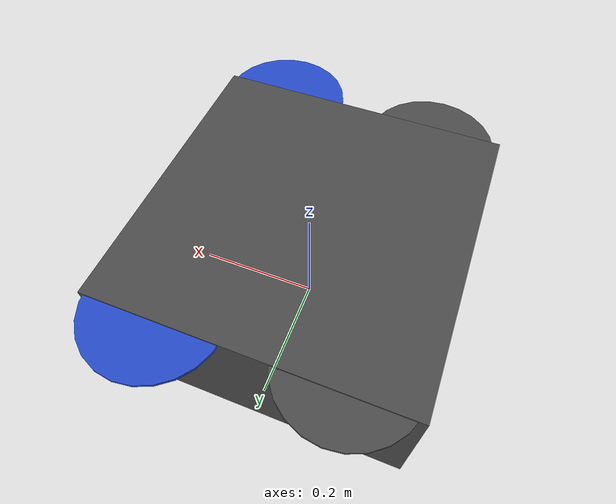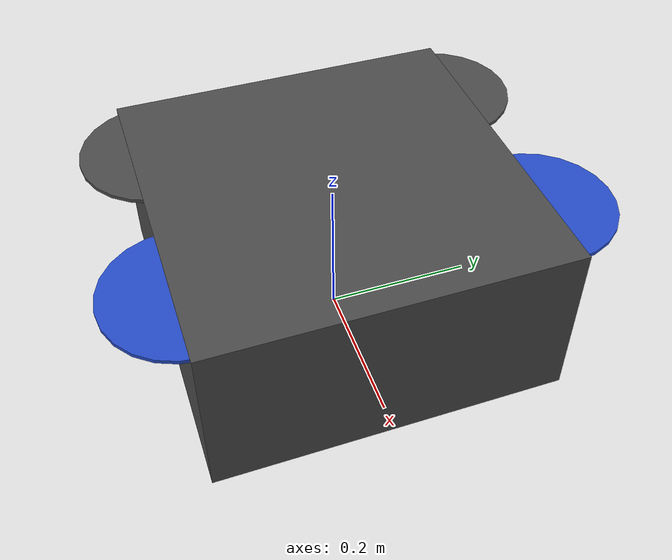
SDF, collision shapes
<?xml version='1.0'?>
<sdf version="1.6" xmlns:xacro='http://ros.org/wiki/xacro'>
  <model name="iris_kinect">
    <include>
      <uri>model://iris_base</uri>
    </include>

    <include>
      <uri>model://kinect_depth</uri>
      <pose>0.03 0 0.13 0 0.6 0</pose>
    </include>

    <joint name="cam_mount" type="fixed">
      <parent>iris_base::base_link</parent>
      <child>kinect::cam_link</child>
      <axis>
        <limit>
          <lower>0</lower>
          <upper>0</upper>
        </limit>
        <xyz>0 0 1</xyz>
        <use_parent_model_frame>true</use_parent_model_frame>
      </axis>
    </joint>

    <!-- plugins -->

    <plugin name="rotor_0_blade_1" filename="libLiftDragPlugin.so">
      <a0>0.1</a0>
      <alpha_stall>1.4</alpha_stall>
      <cla>0.2500</cla>
      <cda>0.10</cda>
      <cma>0.00</cma>
      <cla_stall>-0.025</cla_stall>
      <cda_stall>0.0</cda_stall>
      <cma_stall>0.0</cma_stall>
      <area>0.2</area>
      <air_density>1.2041</air_density>
      <cp>0.084 0 0</cp>
      <forward>0 1 0</forward>
      <upward>0 0 1</upward>
      <link_name>iris_base::rotor_0</link_name>
    </plugin>
    <plugin name="rotor_0_blade_2" filename="libLiftDragPlugin.so">
      <a0>0.1</a0>
      <alpha_stall>1.4</alpha_stall>
      <cla>0.2500</cla>
      <cda>0.10</cda>
      <cma>0.00</cma>
      <cla_stall>-0.025</cla_stall>
      <cda_stall>0.0</cda_stall>
      <cma_stall>0.0</cma_stall>
      <area>0.2</area>
      <air_density>1.2041</air_density>
      <cp>-0.084 0 0</cp>
      <forward>0 -1 0</forward>
      <upward>0 0 1</upward>
      <link_name>iris_base::rotor_0</link_name>
    </plugin>

    <plugin name="rotor_1_blade_1" filename="libLiftDragPlugin.so">
      <a0>0.1</a0>
      <alpha_stall>1.4</alpha_stall>
      <cla>0.2500</cla>
      <cda>0.10</cda>
      <cma>0.00</cma>
      <cla_stall>-0.025</cla_stall>
      <cda_stall>0.0</cda_stall>
      <cma_stall>0.0</cma_stall>
      <area>0.2</area>
      <air_density>1.2041</air_density>
      <cp>0.084 0 0</cp>
      <forward>0 1 0</forward>
      <upward>0 0 1</upward>
      <link_name>iris_base::rotor_1</link_name>
    </plugin>
    <plugin name="rotor_1_blade_2" filename="libLiftDragPlugin.so">
      <a0>0.1</a0>
      <alpha_stall>1.4</alpha_stall>
      <cla>0.2500</cla>
      <cda>0.10</cda>
      <cma>0.00</cma>
      <cla_stall>-0.025</cla_stall>
      <cda_stall>0.0</cda_stall>
      <cma_stall>0.0</cma_stall>
      <area>0.2</area>
      <air_density>1.2041</air_density>
      <cp>-0.084 0 0</cp>
      <forward>0 -1 0</forward>
      <upward>0 0 1</upward>
      <link_name>iris_base::rotor_1</link_name>
    </plugin>

    <plugin name="rotor_2_blade_1" filename="libLiftDragPlugin.so">
      <a0>0.1</a0>
      <alpha_stall>1.4</alpha_stall>
      <cla>0.2500</cla>
      <cda>0.10</cda>
      <cma>0.00</cma>
      <cla_stall>-0.025</cla_stall>
      <cda_stall>0.0</cda_stall>
      <cma_stall>0.0</cma_stall>
      <area>0.2</area>
      <air_density>1.2041</air_density>
      <cp>0.084 0 0</cp>
      <forward>0 -1 0</forward>
      <upward>0 0 1</upward>
      <link_name>iris_base::rotor_2</link_name>
    </plugin>
    <plugin name="rotor_2_blade_2" filename="libLiftDragPlugin.so">
      <a0>0.1</a0>
      <alpha_stall>1.4</alpha_stall>
      <cla>0.2500</cla>
      <cda>0.10</cda>
      <cma>0.00</cma>
      <cla_stall>-0.025</cla_stall>
      <cda_stall>0.0</cda_stall>
      <cma_stall>0.0</cma_stall>
      <area>0.2</area>
      <air_density>1.2041</air_density>
      <cp>-0.084 0 0</cp>
      <forward>0 1 0</forward>
      <upward>0 0 1</upward>
      <link_name>iris_base::rotor_2</link_name>
    </plugin>

    <plugin name="rotor_3_blade_1" filename="libLiftDragPlugin.so">
      <a0>0.1</a0>
      <alpha_stall>1.4</alpha_stall>
      <cla>0.2500</cla>
      <cda>0.10</cda>
      <cma>0.00</cma>
      <cla_stall>-0.025</cla_stall>
      <cda_stall>0.0</cda_stall>
      <cma_stall>0.0</cma_stall>
      <area>0.2</area>
      <air_density>1.2041</air_density>
      <cp>0.084 0 0</cp>
      <forward>0 -1 0</forward>
      <upward>0 0 1</upward>
      <link_name>iris_base::rotor_3</link_name>
    </plugin>
    <plugin name="rotor_3_blade_2" filename="libLiftDragPlugin.so">
      <a0>0.1</a0>
      <alpha_stall>1.4</alpha_stall>
      <cla>0.2500</cla>
      <cda>0.10</cda>
      <cma>0.00</cma>
      <cla_stall>-0.025</cla_stall>
      <cda_stall>0.0</cda_stall>
      <cma_stall>0.0</cma_stall>
      <area>0.2</area>
      <air_density>1.2041</air_density>
      <cp>-0.084 0 0</cp>
      <forward>0 1 0</forward>
      <upward>0 0 1</upward>
      <link_name>iris_base::rotor_3</link_name>
    </plugin>

    <plugin name="arducopter_plugin" filename="libArduPilotPlugin.so">
      <fdm_addr>127.0.0.1</fdm_addr>
      <fdm_port_in>9002</fdm_port_in>
      <fdm_port_out>9003</fdm_port_out>
      <!--
          Require by APM :
          Only change model and gazebo from XYZ to XY-Z coordinates
      -->
      <modelXYZToAirplaneXForwardZDown>0 0 0 3.141593 0 0</modelXYZToAirplaneXForwardZDown>
      <gazeboXYZToNED>0 0 0 3.141593 0 0</gazeboXYZToNED>
      <imuName>iris_kinect::iris_base::iris/imu_link::imu_sensor</imuName>
      <connectionTimeoutMaxCount>5</connectionTimeoutMaxCount>

      <rotor id="0">
        <vel_p_gain>0.01</vel_p_gain>
        <vel_i_gain>0</vel_i_gain>
        <vel_d_gain>0</vel_d_gain>
        <vel_i_max>0</vel_i_max>
        <vel_i_min>0</vel_i_min>
        <vel_cmd_max>2.0</vel_cmd_max>
        <vel_cmd_min>-2.0</vel_cmd_min>
        <jointName>iris_base::rotor_0_joint</jointName>
        <turningDirection>ccw</turningDirection>
        <rotorVelocitySlowdownSim>1</rotorVelocitySlowdownSim>
      </rotor>
      <rotor id="1">
        <vel_p_gain>0.01</vel_p_gain>
        <vel_i_gain>0</vel_i_gain>
        <vel_d_gain>0</vel_d_gain>
        <vel_i_max>0</vel_i_max>
        <vel_i_min>0</vel_i_min>
        <vel_cmd_max>2.0</vel_cmd_max>
        <vel_cmd_min>-2.0</vel_cmd_min>
        <jointName>iris_base::rotor_1_joint</jointName>
        <turningDirection>ccw</turningDirection>
        <rotorVelocitySlowdownSim>1</rotorVelocitySlowdownSim>
      </rotor>
      <rotor id="2">
        <vel_p_gain>0.01</vel_p_gain>
        <vel_i_gain>0</vel_i_gain>
        <vel_d_gain>0</vel_d_gain>
        <vel_i_max>0</vel_i_max>
        <vel_i_min>0</vel_i_min>
        <vel_cmd_max>2.0</vel_cmd_max>
        <vel_cmd_min>-2.0</vel_cmd_min>
        <jointName>iris_base::rotor_2_joint</jointName>
        <turningDirection>cw</turningDirection>
        <rotorVelocitySlowdownSim>1</rotorVelocitySlowdownSim>
      </rotor>
      <rotor id="3">
        <vel_p_gain>0.01</vel_p_gain>
        <vel_i_gain>0</vel_i_gain>
        <vel_d_gain>0</vel_d_gain>
        <vel_i_max>0</vel_i_max>
        <vel_i_min>0</vel_i_min>
        <vel_cmd_max>2.0</vel_cmd_max>
        <vel_cmd_min>-2.0</vel_cmd_min>
        <jointName>iris::rotor_3_joint</jointName>
        <turningDirection>cw</turningDirection>
        <rotorVelocitySlowdownSim>1</rotorVelocitySlowdownSim>
      </rotor>
    </plugin>

  </model>
</sdf>

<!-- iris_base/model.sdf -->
<sdf version='1.6'>
  <model name='iris_base'>
    <pose>0 0 0.194923 0 0 0</pose>
    <link name='base_link'>
      <velocity_decay>
        <linear>0.0</linear>
        <angular>0.0</angular>
      </velocity_decay>
      <inertial>
        <pose>0 0 0 0 0 0</pose>
        <mass>1.5</mass>
        <inertia>
          <ixx>0.008</ixx>
          <ixy>0</ixy>
          <ixz>0</ixz>
          <iyy>0.015</iyy>
          <iyz>0</iyz>
          <izz>0.017</izz>
        </inertia>
      </inertial>
      <collision name='base_link_collision'>
        <pose>0 0 -0.08 0 0 0</pose>
        <geometry>
          <box>
            <size>0.47 0.47 0.23</size>
          </box>
        </geometry>
        <surface>
          <contact>
            <ode>
              <max_vel>100.0</max_vel>
              <min_depth>0.001</min_depth>
            </ode>
          </contact>
          <friction>
            <ode>
              <mu>1.0</mu>
              <mu2>1.0</mu2>
            </ode>
          </friction>
        </surface>
      </collision>
      <visual name='base_link_visual'>
        <geometry>
          <mesh>
            <uri>model://iris_base/meshes/iris.dae</uri>
          </mesh>
        </geometry>
        <material>
          <script>
            <name>Gazebo/DarkGrey</name>
          </script>
        </material>
      </visual>

      <visual name='front_left_leg_visual'>
        <pose>0.123 0.22 -0.11 0 0 0</pose>
        <geometry>
          <cylinder>
            <radius>0.005</radius>
            <length>0.17</length>
          </cylinder>
        </geometry>
        <material>
          <script>
            <name>Gazebo/FlatBlack</name>
            <uri>file://media/materials/scripts/gazebo.material</uri>
          </script>
        </material>
      </visual>
      <visual name='front_right_leg_visual'>
        <pose>0.123 -0.22 -0.11 0 0 0</pose>
        <geometry>
          <cylinder>
            <radius>0.005</radius>
            <length>0.17</length>
          </cylinder>
        </geometry>
        <material>
          <script>
            <name>Gazebo/FlatBlack</name>
            <uri>file://media/materials/scripts/gazebo.material</uri>
          </script>
        </material>
      </visual>
      <visual name='rear_left_leg_visual'>
        <pose>-0.140 0.21 -0.11 0 0 0</pose>
        <geometry>
          <cylinder>
            <radius>0.005</radius>
            <length>0.17</length>
          </cylinder>
        </geometry>
        <material>
          <script>
            <name>Gazebo/FlatBlack</name>
            <uri>file://media/materials/scripts/gazebo.material</uri>
          </script>
        </material>
      </visual>
      <visual name='rear_right_leg_visual'>
        <pose>-0.140 -0.21 -0.11 0 0 0</pose>
        <geometry>
          <cylinder>
            <radius>0.005</radius>
            <length>0.17</length>
          </cylinder>
        </geometry>
        <material>
          <script>
            <name>Gazebo/FlatBlack</name>
            <uri>file://media/materials/scripts/gazebo.material</uri>
          </script>
        </material>
      </visual>
    </link>
    <link name='iris/ground_truth/odometry_sensorgt_link'>
      <pose>0 0 0 0 -0 0</pose>
      <inertial>
        <pose>0 0 0 0 -0 0</pose>
        <mass>0.15</mass>
        <inertia>
          <ixx>0.0001</ixx>
          <ixy>0</ixy>
          <ixz>0</ixz>
          <iyy>0.0002</iyy>
          <iyz>0</iyz>
          <izz>0.0002</izz>
        </inertia>
      </inertial>
    </link>
    <joint name='iris/ground_truth/odometry_sensorgt_joint' type='revolute'>
      <child>iris/ground_truth/odometry_sensorgt_link</child>
      <parent>base_link</parent>
      <axis>
        <xyz>0 0 1</xyz>
        <limit>
          <lower>0</lower>
          <upper>0</upper>
          <effort>0</effort>
          <velocity>0</velocity>
        </limit>
        <dynamics>
          <damping>1.0</damping>
        </dynamics>
        <use_parent_model_frame>1</use_parent_model_frame>
      </axis>
      <physics>
        <ode>
          <implicit_spring_damper>1</implicit_spring_damper>
        </ode>
      </physics>
    </joint>
    <link name='iris/imu_link'>
      <inertial>
        <pose>0 0 0 0 0 0</pose>
        <mass>0.15</mass>
        <inertia>
          <ixx>0.00001</ixx>
          <ixy>0</ixy>
          <ixz>0</ixz>
          <iyy>0.00002</iyy>
          <iyz>0</iyz>
          <izz>0.00002</izz>
        </inertia>
      </inertial>
      <sensor name="imu_sensor" type="imu">
        <pose>0 0 0 3.141593 0 0</pose>
        <always_on>1</always_on>
        <update_rate>1000.0</update_rate>
      </sensor>
    </link>
    <joint name='iris/imu_joint' type='revolute'>
      <child>iris/imu_link</child>
      <parent>base_link</parent>
      <axis>
        <xyz>0 0 1</xyz>
        <limit>
          <lower>0</lower>
          <upper>0</upper>
          <effort>0</effort>
          <velocity>0</velocity>
        </limit>
        <dynamics>
          <damping>1.0</damping>
        </dynamics>
        <use_parent_model_frame>1</use_parent_model_frame>
      </axis>
      <physics>
        <ode>
          <implicit_spring_damper>1</implicit_spring_damper>
        </ode>
      </physics>
    </joint>

    <link name='rotor_0'>
      <pose>0.13 -0.22 0.03 0 -0 0</pose>
      <inertial>
        <pose>0 0 0 0 -0 0</pose>
        <mass>0.025</mass>
        <inertia>
          <ixx>9.75e-06</ixx>
          <ixy>0</ixy>
          <ixz>0</ixz>
          <iyy>0.000166704</iyy>
          <iyz>0</iyz>
          <izz>0.000167604</izz>
        </inertia>
      </inertial>
      <collision name='rotor_0_collision'>
        <pose>0 0 0 0 -0 0</pose>
        <geometry>
          <cylinder>
            <length>0.005</length>
            <radius>0.1</radius>
          </cylinder>
        </geometry>
        <surface>
          <contact>
            <ode/>
          </contact>
          <friction>
            <ode/>
          </friction>
        </surface>
      </collision>
      <visual name='rotor_0_visual'>
        <pose>0 0 0 0 -0 0</pose>
        <geometry>
          <mesh>
            <scale>1 1 1</scale>
            <uri>model://iris_base/meshes/iris_prop_ccw.dae</uri>
          </mesh>
        </geometry>
        <material>
          <script>
            <name>Gazebo/Blue</name>
            <uri>__default__</uri>
          </script>
        </material>
      </visual>
      <gravity>1</gravity>
      <velocity_decay/>
      <self_collide>0</self_collide>
    </link>
    <joint name='rotor_0_joint' type='revolute'>
      <child>rotor_0</child>
      <parent>base_link</parent>
      <axis>
        <xyz>0 0 1</xyz>
        <limit>
          <lower>-1e+16</lower>
          <upper>1e+16</upper>
        </limit>
        <dynamics>
          <damping>0.004</damping>
        </dynamics>
        <use_parent_model_frame>1</use_parent_model_frame>
      </axis>
      <physics>
        <ode>
          <implicit_spring_damper>1</implicit_spring_damper>
        </ode>
      </physics>
    </joint>
    <link name='rotor_1'>
      <pose>-0.13 0.2 0.03 0 -0 0</pose>
      <inertial>
        <pose>0 0 0 0 -0 0</pose>
        <mass>0.025</mass>
        <inertia>
          <ixx>9.75e-06</ixx>
          <ixy>0</ixy>
          <ixz>0</ixz>
          <iyy>0.000166704</iyy>
          <iyz>0</iyz>
          <izz>0.000167604</izz>
        </inertia>
      </inertial>
      <collision name='rotor_1_collision'>
        <pose>0 0 0 0 -0 0</pose>
        <geometry>
          <cylinder>
            <length>0.005</length>
            <radius>0.1</radius>
          </cylinder>
        </geometry>
        <surface>
          <contact>
            <ode/>
          </contact>
          <friction>
            <ode/>
          </friction>
        </surface>
      </collision>
      <visual name='rotor_1_visual'>
        <pose>0 0 0 0 -0 0</pose>
        <geometry>
          <mesh>
            <scale>1 1 1</scale>
            <uri>model://iris_base/meshes/iris_prop_ccw.dae</uri>
          </mesh>
        </geometry>
        <material>
          <script>
            <name>Gazebo/DarkGrey</name>
            <uri>__default__</uri>
          </script>
        </material>
      </visual>
      <gravity>1</gravity>
      <velocity_decay/>
      <self_collide>0</self_collide>
    </link>
    <joint name='rotor_1_joint' type='revolute'>
      <child>rotor_1</child>
      <parent>base_link</parent>
      <axis>
        <xyz>0 0 1</xyz>
        <limit>
          <lower>-1e+16</lower>
          <upper>1e+16</upper>
        </limit>
        <dynamics>
          <damping>0.004</damping>
        </dynamics>
        <use_parent_model_frame>1</use_parent_model_frame>
      </axis>
      <physics>
        <ode>
          <implicit_spring_damper>1</implicit_spring_damper>
        </ode>
      </physics>
    </joint>
    <link name='rotor_2'>
      <pose>0.13 0.22 0.03 0 -0 0</pose>
      <inertial>
        <pose>0 0 0 0 -0 0</pose>
        <mass>0.025</mass>
        <inertia>
          <ixx>9.75e-06</ixx>
          <ixy>0</ixy>
          <ixz>0</ixz>
          <iyy>0.000166704</iyy>
          <iyz>0</iyz>
          <izz>0.000167604</izz>
        </inertia>
      </inertial>
      <collision name='rotor_2_collision'>
        <pose>0 0 0 0 -0 0</pose>
        <geometry>
          <cylinder>
            <length>0.005</length>
            <radius>0.1</radius>
          </cylinder>
        </geometry>
        <surface>
          <contact>
            <ode/>
          </contact>
          <friction>
            <ode/>
          </friction>
        </surface>
      </collision>
      <visual name='rotor_2_visual'>
        <pose>0 0 0 0 -0 0</pose>
        <geometry>
          <mesh>
            <scale>1 1 1</scale>
            <uri>model://iris_base/meshes/iris_prop_cw.dae</uri>
          </mesh>
        </geometry>
        <material>
          <script>
            <name>Gazebo/Blue</name>
            <uri>__default__</uri>
          </script>
        </material>
      </visual>
      <gravity>1</gravity>
      <velocity_decay/>
      <self_collide>0</self_collide>
    </link>
    <joint name='rotor_2_joint' type='revolute'>
      <child>rotor_2</child>
      <parent>base_link</parent>
      <axis>
        <xyz>0 0 1</xyz>
        <limit>
          <lower>-1e+16</lower>
          <upper>1e+16</upper>
        </limit>
        <dynamics>
          <damping>0.004</damping>
        </dynamics>
        <use_parent_model_frame>1</use_parent_model_frame>
      </axis>
      <physics>
        <ode>
          <implicit_spring_damper>1</implicit_spring_damper>
        </ode>
      </physics>
    </joint>
    <link name='rotor_3'>
      <pose>-0.13 -0.2 0.03 0 -0 0</pose>
      <inertial>
        <pose>0 0 0 0 -0 0</pose>
        <mass>0.025</mass>
        <inertia>
          <ixx>9.75e-06</ixx>
          <ixy>0</ixy>
          <ixz>0</ixz>
          <iyy>0.000166704</iyy>
          <iyz>0</iyz>
          <izz>0.000167604</izz>
        </inertia>
      </inertial>
      <collision name='rotor_3_collision'>
        <pose>0 0 0 0 -0 0</pose>
        <geometry>
          <cylinder>
            <length>0.005</length>
            <radius>0.1</radius>
          </cylinder>
        </geometry>
        <surface>
          <contact>
            <ode/>
          </contact>
          <friction>
            <ode/>
          </friction>
        </surface>
      </collision>
      <visual name='rotor_3_visual'>
        <pose>0 0 0 0 -0 0</pose>
        <geometry>
          <mesh>
            <scale>1 1 1</scale>
            <uri>model://iris_base/meshes/iris_prop_cw.dae</uri>
          </mesh>
        </geometry>
        <material>
          <script>
            <name>Gazebo/DarkGrey</name>
            <uri>__default__</uri>
          </script>
        </material>
      </visual>
      <gravity>1</gravity>
      <velocity_decay/>
      <self_collide>0</self_collide>
    </link>
    <joint name='rotor_3_joint' type='revolute'>
      <child>rotor_3</child>
      <parent>base_link</parent>
      <axis>
        <xyz>0 0 1</xyz>
        <limit>
          <lower>-1e+16</lower>
          <upper>1e+16</upper>
        </limit>
        <dynamics>
          <damping>0.004</damping>
        </dynamics>
        <use_parent_model_frame>1</use_parent_model_frame>
      </axis>
      <physics>
        <ode>
          <implicit_spring_damper>1</implicit_spring_damper>
        </ode>
      </physics>
    </joint>
    <static>0</static>

    <link name="chase_cam_link">
        <pose>0 0 0 0 0 0 </pose>
        <inertial>
          <mass>0.01</mass>
          <inertia>
            <ixx>0.0001</ixx>
            <iyy>0.0001</iyy>
            <izz>0.0001</izz>
          </inertia>
        </inertial>
      <sensor name="chase_cam" type="camera">
        <pose>-2 0 0.6 0 0.37 0</pose>
        <camera>
          <horizontal_fov>1.2</horizontal_fov>
          <image>
            <width>1920</width>
            <height>1080</height>
          </image>
          <clip>
            <near>0.1</near>
            <far>1000</far>
          </clip>
        </camera>
        <always_on>0</always_on>
        <update_rate>60</update_rate>
        <visualize>true</visualize>
        <plugin name="camera_controller" filename="libgazebo_ros_camera.so">
          <alwaysOn>true</alwaysOn>
          <updateRate>0.0</updateRate>
          <cameraName>chase_cam</cameraName>
          <imageTopicName>image_raw</imageTopicName>
          <cameraInfoTopicName>camera_info</cameraInfoTopicName>
          <frameName>chase_cam_link</frameName>
          <hackBaseline>0.07</hackBaseline>
          <distortionK1>0.0</distortionK1>
          <distortionK2>0.0</distortionK2>
          <distortionK3>0.0</distortionK3>
          <distortionT1>0.0</distortionT1>
          <distortionT2>0.0</distortionT2>
        </plugin>
      </sensor>
    </link>

  </model>
</sdf>

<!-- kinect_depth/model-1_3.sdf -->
<sdf version="1.3">
  <model name="kinect">
    <pose>0 0 0.036 0 0 0</pose>
    <link name="cam_link">

      <collision name="collision">
        <geometry>
          <box>
            <size>0.073000 0.276000 0.072000</size>
          </box>
        </geometry>
      </collision>
      <visual name="visual">
        <geometry>
          <mesh>
            <uri>model://kinect/meshes/kinect.dae</uri>
          </mesh>
        </geometry>
      </visual>
      <sensor name="camera" type="depth">
            <update_rate>20</update_rate>
            <camera>
                <horizontal_fov>1.047198</horizontal_fov>
                <image>
                    <width>640</width>
                    <height>480</height>
                    <format>R8G8B8</format>
                </image>
                <clip>
                    <near>0.05</near>
                    <far>3</far>
                </clip>
            </camera>
            <plugin name="camera_plugin" filename="libgazebo_ros_openni_kinect.so">
                <baseline>0.2</baseline>
                <alwaysOn>true</alwaysOn>
                <updateRate>0.0</updateRate>
                <cameraName>camera_ir</cameraName>
                <imageTopicName>/camera/rgb/image_rect_color</imageTopicName>
                <cameraInfoTopicName>/camera/rgb/camera_info</cameraInfoTopicName>
                <depthImageTopicName>/camera/depth_registered/sw_registered/image_rect_raw</depthImageTopicName>
                <depthImageInfoTopicName>/camera/depth/camera_info</depthImageInfoTopicName>
                <pointCloudTopicName>/camera/depth/points</pointCloudTopicName>
                <frameName>camera_link</frameName>
                <pointCloudCutoff>0.05</pointCloudCutoff>
                <distortionK1>0</distortionK1>
                <distortionK2>0</distortionK2>
                <distortionK3>0</distortionK3>
                <distortionT1>0</distortionT1>
                <distortionT2>0</distortionT2>
                <CxPrime>0</CxPrime>
                <Cx>0</Cx>
                <Cy>0</Cy>
                <focalLength>0</focalLength>
                <hackBaseline>0</hackBaseline>
            </plugin>
      </sensor>
    </link>
  </model>
</sdf>
